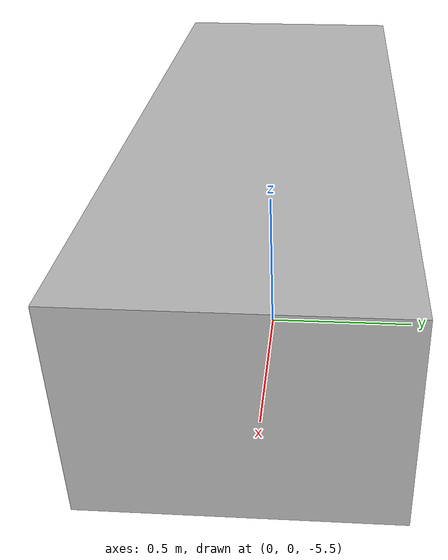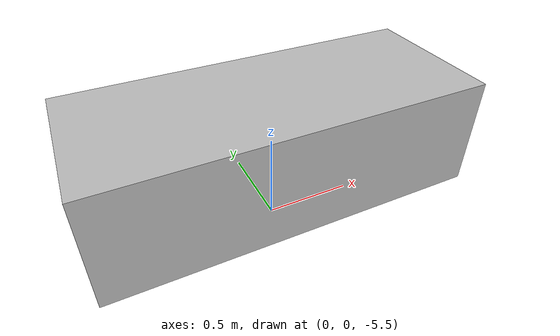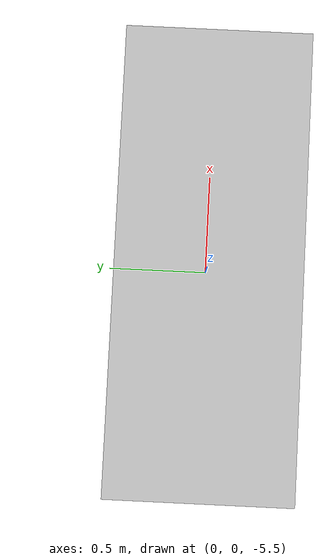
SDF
<?xml version="1.0"?>
<sdf version="1.6">
  <world name="oceansync_world">

    <gravity>0 0 -9.81</gravity>

    <physics type="ode">
      <max_step_size>0.001</max_step_size>
      <real_time_factor>1</real_time_factor>
      <real_time_update_rate>1000</real_time_update_rate>
    </physics>

    <!-- Underwater environment: water surface at z = 0 -->
    <scene>
      <ambient>0.15 0.2 0.25 1</ambient>
      <background>0.02 0.08 0.12 1</background>
      <shadows>true</shadows>
    </scene>

    <!-- Directional light -->
    <light name="sun" type="directional">
      <cast_shadows>true</cast_shadows>
      <pose>0 0 50 0 0 0</pose>
      <diffuse>0.7 0.8 0.9 1</diffuse>
      <specular>0.2 0.2 0.2 1</specular>
      <direction>-0.3 0.2 -1</direction>
    </light>

    <!-- Seabed -->
    <model name="seabed">
      <static>true</static>

      <link name="seabed_link">

        <collision name="collision">
          <pose>0 0 -10 0 0 0</pose>
          <geometry>
            <box>
              <size>100 100 0.2</size>
            </box>
          </geometry>
        </collision>

        <visual name="visual">
          <pose>0 0 -10 0 0 0</pose>
          <geometry>
            <box>
              <size>100 100 0.2</size>
            </box>
          </geometry>
        </visual>

      </link>
    </model>

    <!-- OceanSync AUV -->
    <include>
      <uri>model://oceansync_auv</uri>
      <name>oceansync_auv</name>
      <pose>0 0 -5 0 0 0</pose>
    </include>

  </world>
</sdf>

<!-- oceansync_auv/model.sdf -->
<sdf version="1.6">
  <model name="oceansync_auv">

    <static>false</static>

    <pose>0 0 0 0 0 0</pose>

    <link name="base_link">
   <link name="buoyancy_volume">

  <pose>0 0 0 0 0 0</pose>

  <inertial>
    <mass>0.1</mass>
    <inertia>
      <ixx>0.001</ixx>
      <iyy>0.001</iyy>
      <izz>0.001</izz>
      <ixy>0</ixy>
      <ixz>0</ixz>
      <iyz>0</iyz>
    </inertia>
  </inertial>

  <collision name="buoyancy_collision">
    <geometry>
      <box>
        <size>2.0 0.8 0.6</size>
      </box>
    </geometry>
  </collision>

  <visual name="buoyancy_visual">
    <visible>false</visible>
    <geometry>
      <box>
        <size>2.0 0.8 0.6</size>
      </box>
    </geometry>
  </visual>

</link>

<joint name="buoyancy_volume_joint" type="fixed">
  <parent>base_link</parent>
  <child>buoyancy_volume</child>
</joint>
      <inertial>
        <mass>50.0</mass>

        <inertia>
          <ixx>8.0</ixx>
          <iyy>18.0</iyy>
          <izz>20.0</izz>
          <ixy>0.0</ixy>
          <ixz>0.0</ixz>
          <iyz>0.0</iyz>
        </inertia>
      </inertial>

      <!-- Temporary body.
           Later this can be replaced by the final CAD mesh. -->
      <collision name="body_collision">
        <geometry>
          <box>
            <size>2.0 0.8 0.6</size>
          </box>
        </geometry>
      </collision>

      <visual name="body_visual">
        <geometry>
          <box>
            <size>2.0 0.8 0.6</size>
          </box>
        </geometry>
      </visual>

      <!-- IMU                       -->

      <sensor name="imu" type="imu">

        <always_on>true</always_on>
        <update_rate>100</update_rate>

        <plugin
          name="imu_plugin"
          filename="libgazebo_ros_imu_sensor.so">

          <ros>
            <namespace>/oceansync</namespace>
            <remapping>~/out:=imu/data</remapping>
          </ros>

          <frame_name>imu_link</frame_name>

        </plugin>

      </sensor>

      <!-- CAMERA                    -->

      <sensor name="camera" type="camera">

        <pose>1.0 0 0 0 0 0</pose>

        <always_on>true</always_on>
        <update_rate>20</update_rate>

        <camera>

          <horizontal_fov>1.047</horizontal_fov>

          <image>
            <width>640</width>
            <height>480</height>
            <format>R8G8B8</format>
          </image>

          <clip>
            <near>0.1</near>
            <far>50.0</far>
          </clip>

        </camera>

        <plugin
          name="camera_plugin"
          filename="libgazebo_ros_camera.so">

          <ros>
            <namespace>/oceansync</namespace>
            <remapping>image_raw:=camera/image_raw</remapping>
          </ros>

          <camera_name>underwater_camera</camera_name>
          <frame_name>camera_link</frame_name>

        </plugin>

      </sensor>

      <!-- SONAR / RAY SENSOR        -->

      <sensor name="sonar" type="ray">

        <pose>1.0 0 0 0 0 0</pose>

        <always_on>true</always_on>
        <update_rate>10</update_rate>

        <ray>

          <scan>

            <horizontal>
              <samples>181</samples>
              <resolution>1</resolution>
              <min_angle>-1.5708</min_angle>
              <max_angle>1.5708</max_angle>
            </horizontal>

          </scan>

          <range>
            <min>0.2</min>
            <max>50.0</max>
            <resolution>0.05</resolution>
          </range>

        </ray>

        <plugin
          name="sonar_plugin"
          filename="libgazebo_ros_ray_sensor.so">

          <ros>
            <namespace>/oceansync</namespace>
            <remapping>~/out:=sonar/scan</remapping>
          </ros>

          <output_type>sensor_msgs/LaserScan</output_type>
          <frame_name>sonar_link</frame_name>

        </plugin>

      </sensor>

    </link>

    <!-- SENSOR FRAMES             -->

    <link name="imu_link"/>

    <joint name="imu_joint" type="fixed">
      <parent>base_link</parent>
      <child>imu_link</child>
    </joint>

    <link name="camera_link"/>

    <joint name="camera_joint" type="fixed">
      <parent>base_link</parent>
      <child>camera_link</child>
    </joint>

    <link name="sonar_link"/>

    <joint name="sonar_joint" type="fixed">
      <parent>base_link</parent>
      <child>sonar_link</child>
    </joint>

    <!-- BUOYANCY                  -->

  </model>
</sdf>
